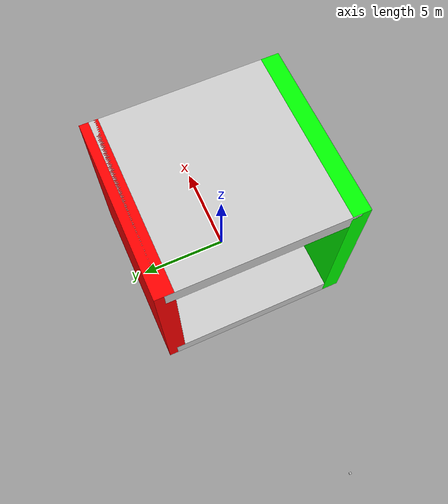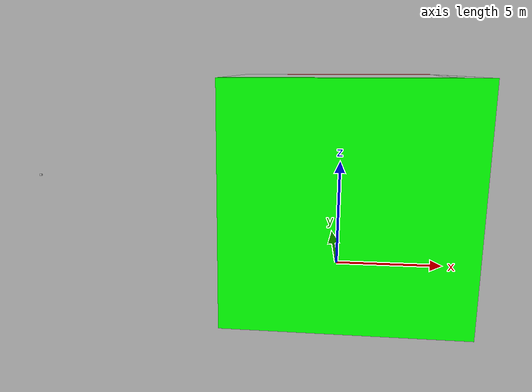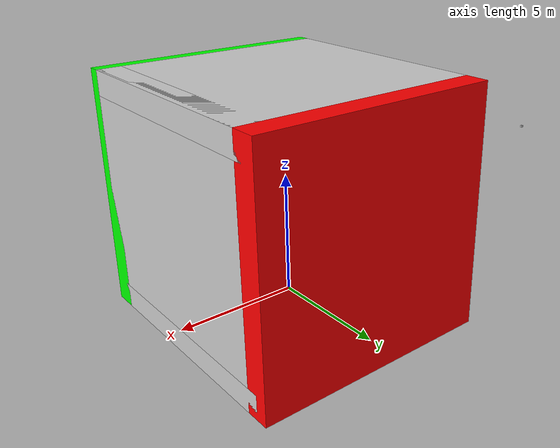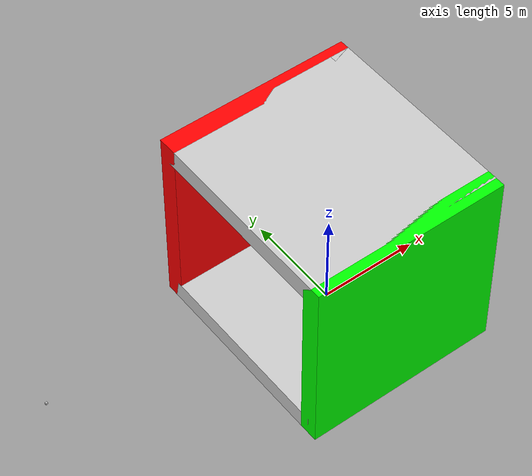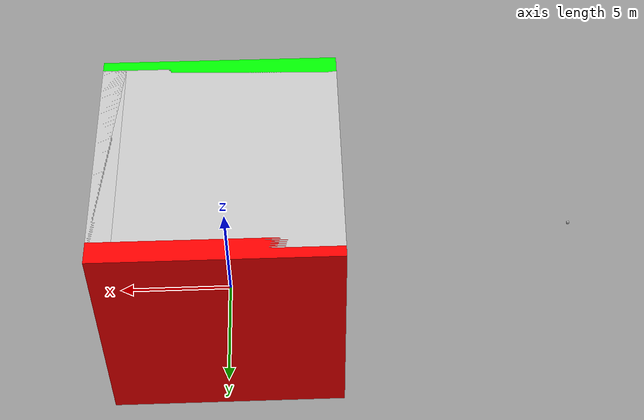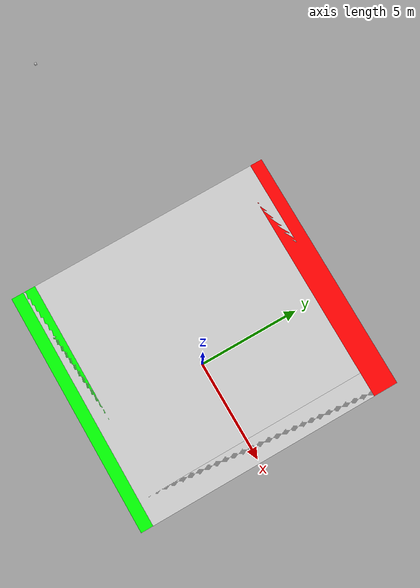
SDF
<sdf version="1.10">
 <world name="gi_demo">
  <plugin filename="gz-sim-physics-system" name="gz::sim::systems::Physics"/>
  <plugin filename="gz-sim-sensors-system" name="gz::sim::systems::Sensors">
   <render_engine>ogre2</render_engine>
   <global_illumination type="vct">
    <enabled>true</enabled>
    <resolution>16 16 16</resolution>
    <octant_count>1 1 1</octant_count>
    <bounce_count>6</bounce_count>
    <high_quality>true</high_quality>
    <anisotropic>true</anisotropic>
    <thin_wall_counter>1.0</thin_wall_counter>
    <conserve_memory>true</conserve_memory>
    <debug_vis_mode>none</debug_vis_mode>
   </global_illumination>
  </plugin>
  <plugin filename="gz-sim-user-commands-system" name="gz::sim::systems::UserCommands"/>
  <plugin filename="gz-sim-scene-broadcaster-system" name="gz::sim::systems::SceneBroadcaster"/>
  <scene><ambient>0.4 0.4 0.4</ambient><background>0 0 0</background></scene>
  <light type="point" name="ceiling_light">
   <pose>0 0 7.5 0 0 0</pose>
   <diffuse>1 1 1 1</diffuse>
   <specular>0.0 0.0 0.0 0</specular>
   <attenuation>
    <range>50</range>
    <linear>0</linear>
    <constant>0</constant>
    <quadratic>0.02</quadratic>
   </attenuation>
   <visualize>false</visualize>
   <intensity>1.0</intensity>
  </light>
  <model name="wall_left">
   <pose>0 5 4 0 0 0</pose>
   <static>true</static>
   <link name="link">
    <collision name="collision"><geometry><box><size>10 1 10</size></box></geometry></collision>
    <visual name="visual">
     <geometry><box><size>10 1 10</size></box></geometry>
     <material><ambient>1 0 0 1</ambient><diffuse>1 0 0 1</diffuse><specular>1 0 0 1</specular></material>
    </visual>
   </link>
  </model>
  <model name="wall_right">
   <pose>0 -5 4 0 0 0</pose>
   <static>true</static>
   <link name="link">
    <collision name="collision"><geometry><box><size>10 1 10</size></box></geometry></collision>
    <visual name="visual">
     <geometry><box><size>10 1 10</size></box></geometry>
     <material><ambient>0 1 0 1</ambient><diffuse>0 1 0 1</diffuse><specular>0 1 0 1</specular></material>
    </visual>
   </link>
  </model>
  <model name="floor">
   <pose>0 0 -0.5 0 0 0</pose>
   <static>true</static>
   <link name="link">
    <collision name="collision"><geometry><box><size>10 10 1</size></box></geometry></collision>
    <visual name="visual">
     <geometry><box><size>10 10 1</size></box></geometry>
     <material>
      <ambient>0.8 0.8 0.8 1</ambient>
      <diffuse>0.8 0.8 0.8 1</diffuse>
      <specular>0.8 0.8 0.8 1</specular>
     </material>
    </visual>
   </link>
  </model>
  <model name="ceiling">
   <pose>0 0 8.5 0 0 0</pose>
   <static>true</static>
   <link name="link">
    <collision name="collision"><geometry><box><size>10 10 1</size></box></geometry></collision>
    <visual name="visual">
     <geometry><box><size>10 10 1</size></box></geometry>
     <material>
      <ambient>0.8 0.8 0.8 1</ambient>
      <diffuse>0.8 0.8 0.8 1</diffuse>
      <specular>0.8 0.8 0.8 1</specular>
     </material>
    </visual>
   </link>
  </model>
  <model name="wall_back">
   <pose>4.5 0 4 0 0 0</pose>
   <static>true</static>
   <link name="link">
    <collision name="collision"><geometry><box><size>1 10 10</size></box></geometry></collision>
    <visual name="visual">
     <geometry><box><size>1 10 10</size></box></geometry>
     <material>
      <ambient>0.8 0.8 0.8 1</ambient>
      <diffuse>0.8 0.8 0.8 1</diffuse>
      <specular>0.8 0.8 0.8 1</specular>
     </material>
    </visual>
   </link>
  </model>
  <model name="camera">
   <pose>-15 0 4 0 0.0 0</pose>
   <static>true</static>
   <link name="link">
    <pose>0.05 0.05 0.05 0 0 0</pose>
    <collision name="collision"><geometry><box><size>0.1 0.1 0.1</size></box></geometry></collision>
    <visual name="visual"><geometry><box><size>0.1 0.1 0.1</size></box></geometry></visual>
    <sensor name="camera" type="camera">
     <camera>
      <horizontal_fov>1.047</horizontal_fov>
      <image><width>2560</width><height>1920</height></image>
      <clip><near>0.1</near><far>100</far></clip>
     </camera>
     <always_on>1</always_on>
     <update_rate>30</update_rate>
     <visualize>true</visualize>
     <topic>camera</topic>
    </sensor>
   </link>
  </model>
 </world>
</sdf>
